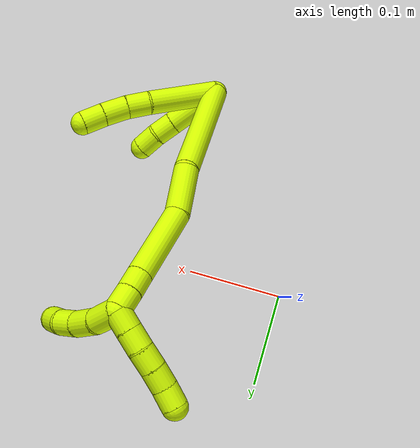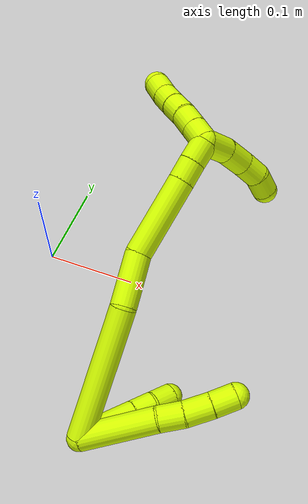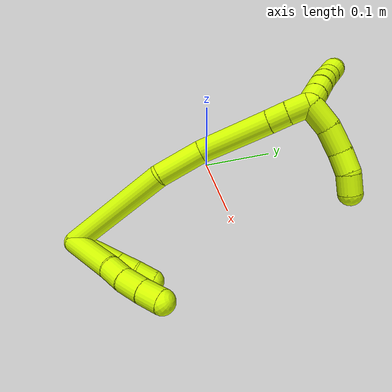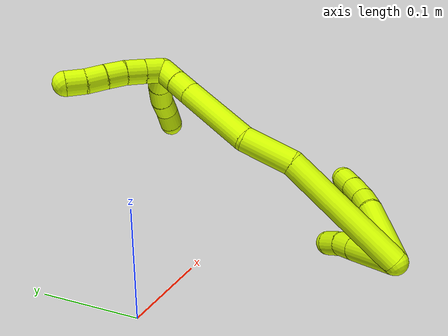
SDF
<sdf version="1.7">
 <world name="default">
  <model name="15">
   <static>0</static>
   <link name="15">
    <collision name="collision-cylinder-e_1_2_8">
     <pose>0.018145 -0.016796 0.028971 0.525381 0.496565 0.136131</pose>
     <geometry><cylinder><radius>0.0125</radius><length>0.076176</length></cylinder></geometry>
     <surface>
      <friction><ode><mu>1.16</mu><mu2>1.16</mu2><slip1>0</slip1><slip2>0</slip2></ode></friction>
      <contact><ode><kp>1e+06</kp><kd>1</kd><max_vel>0</max_vel><min_depth>0.001</min_depth></ode></contact>
     </surface>
    </collision>
    <visual name="visual-cylinder-e_1_2_8">
     <pose>0.018145 -0.016796 0.028971 0.525381 0.496565 0.136131</pose>
     <geometry><cylinder><radius>0.0125</radius><length>0.076176</length></cylinder></geometry>
     <material><ambient>0.835294 1 0 1</ambient></material>
    </visual>
    <collision name="collision-cylinder-e_2_8_9">
     <pose>0.043577 -0.038583 0.0661 0.549185 0.651114 0.189622</pose>
     <geometry><cylinder><radius>0.0125</radius><length>0.024045</length></cylinder></geometry>
     <surface>
      <friction><ode><mu>1.16</mu><mu2>1.16</mu2><slip1>0</slip1><slip2>0</slip2></ode></friction>
      <contact><ode><kp>1e+06</kp><kd>1</kd><max_vel>0</max_vel><min_depth>0.001</min_depth></ode></contact>
     </surface>
    </collision>
    <visual name="visual-cylinder-e_2_8_9">
     <pose>0.043577 -0.038583 0.0661 0.549185 0.651114 0.189622</pose>
     <geometry><cylinder><radius>0.0125</radius><length>0.024045</length></cylinder></geometry>
     <material><ambient>0.835294 1 0 1</ambient></material>
    </visual>
    <collision name="collision-cylinder-e_3_9_10">
     <pose>0.058795 -0.047529 0.083964 0.386756 0.647711 0.131278</pose>
     <geometry><cylinder><radius>0.0125</radius><length>0.026289</length></cylinder></geometry>
     <surface>
      <friction><ode><mu>1.16</mu><mu2>1.16</mu2><slip1>0</slip1><slip2>0</slip2></ode></friction>
      <contact><ode><kp>1e+06</kp><kd>1</kd><max_vel>0</max_vel><min_depth>0.001</min_depth></ode></contact>
     </surface>
    </collision>
    <visual name="visual-cylinder-e_3_9_10">
     <pose>0.058795 -0.047529 0.083964 0.386756 0.647711 0.131278</pose>
     <geometry><cylinder><radius>0.0125</radius><length>0.026289</length></cylinder></geometry>
     <material><ambient>0.835294 1 0 1</ambient></material>
    </visual>
    <collision name="collision-cylinder-e_4_10_6">
     <pose>0.073856 -0.054338 0.102558 0.310982 0.652416 0.10596</pose>
     <geometry><cylinder><radius>0.0125</radius><length>0.02349</length></cylinder></geometry>
     <surface>
      <friction><ode><mu>1.16</mu><mu2>1.16</mu2><slip1>0</slip1><slip2>0</slip2></ode></friction>
      <contact><ode><kp>1e+06</kp><kd>1</kd><max_vel>0</max_vel><min_depth>0.001</min_depth></ode></contact>
     </surface>
    </collision>
    <visual name="visual-cylinder-e_4_10_6">
     <pose>0.073856 -0.054338 0.102558 0.310982 0.652416 0.10596</pose>
     <geometry><cylinder><radius>0.0125</radius><length>0.02349</length></cylinder></geometry>
     <material><ambient>0.835294 1 0 1</ambient></material>
    </visual>
    <collision name="collision-cylinder-e_1_2_11">
     <pose>0.023163 0.000183 0.016199 -0.0113 0.960475 -0.005886</pose>
     <geometry><cylinder><radius>0.0125</radius><length>0.056532</length></cylinder></geometry>
     <surface>
      <friction><ode><mu>1.16</mu><mu2>1.16</mu2><slip1>0</slip1><slip2>0</slip2></ode></friction>
      <contact><ode><kp>1e+06</kp><kd>1</kd><max_vel>0</max_vel><min_depth>0.001</min_depth></ode></contact>
     </surface>
    </collision>
    <visual name="visual-cylinder-e_1_2_11">
     <pose>0.023163 0.000183 0.016199 -0.0113 0.960475 -0.005886</pose>
     <geometry><cylinder><radius>0.0125</radius><length>0.056532</length></cylinder></geometry>
     <material><ambient>0.835294 1 0 1</ambient></material>
    </visual>
    <collision name="collision-cylinder-e_2_11_12">
     <pose>0.055067 0.000327 0.038763 0.006175 0.941415 0.003142</pose>
     <geometry><cylinder><radius>0.0125</radius><length>0.021626</length></cylinder></geometry>
     <surface>
      <friction><ode><mu>1.16</mu><mu2>1.16</mu2><slip1>0</slip1><slip2>0</slip2></ode></friction>
      <contact><ode><kp>1e+06</kp><kd>1</kd><max_vel>0</max_vel><min_depth>0.001</min_depth></ode></contact>
     </surface>
    </collision>
    <visual name="visual-cylinder-e_2_11_12">
     <pose>0.055067 0.000327 0.038763 0.006175 0.941415 0.003142</pose>
     <geometry><cylinder><radius>0.0125</radius><length>0.021626</length></cylinder></geometry>
     <material><ambient>0.835294 1 0 1</ambient></material>
    </visual>
    <collision name="collision-cylinder-e_3_12_5">
     <pose>0.073519 0.001422 0.049994 -0.229116 1.09554 -0.140156</pose>
     <geometry><cylinder><radius>0.0125</radius><length>0.021842</length></cylinder></geometry>
     <surface>
      <friction><ode><mu>1.16</mu><mu2>1.16</mu2><slip1>0</slip1><slip2>0</slip2></ode></friction>
      <contact><ode><kp>1e+06</kp><kd>1</kd><max_vel>0</max_vel><min_depth>0.001</min_depth></ode></contact>
     </surface>
    </collision>
    <visual name="visual-cylinder-e_3_12_5">
     <pose>0.073519 0.001422 0.049994 -0.229116 1.09554 -0.140156</pose>
     <geometry><cylinder><radius>0.0125</radius><length>0.021842</length></cylinder></geometry>
     <material><ambient>0.835294 1 0 1</ambient></material>
    </visual>
    <collision name="collision-cylinder-e_1_2_13">
     <pose>-0.003409 0.019054 0.061422 -0.300799 -0.052962 0.008028</pose>
     <geometry><cylinder><radius>0.0125</radius><length>0.128799</length></cylinder></geometry>
     <surface>
      <friction><ode><mu>1.16</mu><mu2>1.16</mu2><slip1>0</slip1><slip2>0</slip2></ode></friction>
      <contact><ode><kp>1e+06</kp><kd>1</kd><max_vel>0</max_vel><min_depth>0.001</min_depth></ode></contact>
     </surface>
    </collision>
    <visual name="visual-cylinder-e_1_2_13">
     <pose>-0.003409 0.019054 0.061422 -0.300799 -0.052962 0.008028</pose>
     <geometry><cylinder><radius>0.0125</radius><length>0.128799</length></cylinder></geometry>
     <material><ambient>0.835294 1 0 1</ambient></material>
    </visual>
    <collision name="collision-cylinder-e_2_13_14">
     <pose>-0.003875 0.051429 0.144476 -0.551953 0.115355 -0.032702</pose>
     <geometry><cylinder><radius>0.0125</radius><length>0.05115</length></cylinder></geometry>
     <surface>
      <friction><ode><mu>1.16</mu><mu2>1.16</mu2><slip1>0</slip1><slip2>0</slip2></ode></friction>
      <contact><ode><kp>1e+06</kp><kd>1</kd><max_vel>0</max_vel><min_depth>0.001</min_depth></ode></contact>
     </surface>
    </collision>
    <visual name="visual-cylinder-e_2_13_14">
     <pose>-0.003875 0.051429 0.144476 -0.551953 0.115355 -0.032702</pose>
     <geometry><cylinder><radius>0.0125</radius><length>0.05115</length></cylinder></geometry>
     <material><ambient>0.835294 1 0 1</ambient></material>
    </visual>
    <collision name="collision-cylinder-e_3_14_15">
     <pose>0.006127 0.073765 0.203053 -0.239342 0.18352 -0.022129</pose>
     <geometry><cylinder><radius>0.0125</radius><length>0.077355</length></cylinder></geometry>
     <surface>
      <friction><ode><mu>1.16</mu><mu2>1.16</mu2><slip1>0</slip1><slip2>0</slip2></ode></friction>
      <contact><ode><kp>1e+06</kp><kd>1</kd><max_vel>0</max_vel><min_depth>0.001</min_depth></ode></contact>
     </surface>
    </collision>
    <visual name="visual-cylinder-e_3_14_15">
     <pose>0.006127 0.073765 0.203053 -0.239342 0.18352 -0.022129</pose>
     <geometry><cylinder><radius>0.0125</radius><length>0.077355</length></cylinder></geometry>
     <material><ambient>0.835294 1 0 1</ambient></material>
    </visual>
    <collision name="collision-cylinder-e_4_15_16">
     <pose>0.014918 0.085221 0.249884 -0.242004 0.168517 -0.020539</pose>
     <geometry><cylinder><radius>0.0125</radius><length>0.020662</length></cylinder></geometry>
     <surface>
      <friction><ode><mu>1.16</mu><mu2>1.16</mu2><slip1>0</slip1><slip2>0</slip2></ode></friction>
      <contact><ode><kp>1e+06</kp><kd>1</kd><max_vel>0</max_vel><min_depth>0.001</min_depth></ode></contact>
     </surface>
    </collision>
    <visual name="visual-cylinder-e_4_15_16">
     <pose>0.014918 0.085221 0.249884 -0.242004 0.168517 -0.020539</pose>
     <geometry><cylinder><radius>0.0125</radius><length>0.020662</length></cylinder></geometry>
     <material><ambient>0.835294 1 0 1</ambient></material>
    </visual>
    <collision name="collision-cylinder-e_5_16_1">
     <pose>0.018762 0.089995 0.27033 -0.217473 0.192786 -0.02111</pose>
     <geometry><cylinder><radius>0.0125</radius><length>0.022034</length></cylinder></geometry>
     <surface>
      <friction><ode><mu>1.16</mu><mu2>1.16</mu2><slip1>0</slip1><slip2>0</slip2></ode></friction>
      <contact><ode><kp>1e+06</kp><kd>1</kd><max_vel>0</max_vel><min_depth>0.001</min_depth></ode></contact>
     </surface>
    </collision>
    <visual name="visual-cylinder-e_5_16_1">
     <pose>0.018762 0.089995 0.27033 -0.217473 0.192786 -0.02111</pose>
     <geometry><cylinder><radius>0.0125</radius><length>0.022034</length></cylinder></geometry>
     <material><ambient>0.835294 1 0 1</ambient></material>
    </visual>
    <collision name="collision-cylinder-e_1_1_17">
     <pose>0.035395 0.092461 0.282031 -0.116 1.49173 -0.107191</pose>
     <geometry><cylinder><radius>0.0125</radius><length>0.029136</length></cylinder></geometry>
     <surface>
      <friction><ode><mu>1.16</mu><mu2>1.16</mu2><slip1>0</slip1><slip2>0</slip2></ode></friction>
      <contact><ode><kp>1e+06</kp><kd>1</kd><max_vel>0</max_vel><min_depth>0.001</min_depth></ode></contact>
     </surface>
    </collision>
    <visual name="visual-cylinder-e_1_1_17">
     <pose>0.035395 0.092461 0.282031 -0.116 1.49173 -0.107191</pose>
     <geometry><cylinder><radius>0.0125</radius><length>0.029136</length></cylinder></geometry>
     <material><ambient>0.835294 1 0 1</ambient></material>
    </visual>
    <collision name="collision-cylinder-e_2_17_18">
     <pose>0.063324 0.090575 0.28193 2.12299 1.39574 1.96669</pose>
     <geometry><cylinder><radius>0.0125</radius><length>0.027228</length></cylinder></geometry>
     <surface>
      <friction><ode><mu>1.16</mu><mu2>1.16</mu2><slip1>0</slip1><slip2>0</slip2></ode></friction>
      <contact><ode><kp>1e+06</kp><kd>1</kd><max_vel>0</max_vel><min_depth>0.001</min_depth></ode></contact>
     </surface>
    </collision>
    <visual name="visual-cylinder-e_2_17_18">
     <pose>0.063324 0.090575 0.28193 2.12299 1.39574 1.96669</pose>
     <geometry><cylinder><radius>0.0125</radius><length>0.027228</length></cylinder></geometry>
     <material><ambient>0.835294 1 0 1</ambient></material>
    </visual>
    <collision name="collision-cylinder-e_3_18_19">
     <pose>0.08731 0.085085 0.279197 1.97616 1.2278 1.63776</pose>
     <geometry><cylinder><radius>0.0125</radius><length>0.022469</length></cylinder></geometry>
     <surface>
      <friction><ode><mu>1.16</mu><mu2>1.16</mu2><slip1>0</slip1><slip2>0</slip2></ode></friction>
      <contact><ode><kp>1e+06</kp><kd>1</kd><max_vel>0</max_vel><min_depth>0.001</min_depth></ode></contact>
     </surface>
    </collision>
    <visual name="visual-cylinder-e_3_18_19">
     <pose>0.08731 0.085085 0.279197 1.97616 1.2278 1.63776</pose>
     <geometry><cylinder><radius>0.0125</radius><length>0.022469</length></cylinder></geometry>
     <material><ambient>0.835294 1 0 1</ambient></material>
    </visual>
    <collision name="collision-cylinder-e_4_19_4">
     <pose>0.107303 0.079653 0.273284 2.72453 1.09608 2.4742</pose>
     <geometry><cylinder><radius>0.0125</radius><length>0.021167</length></cylinder></geometry>
     <surface>
      <friction><ode><mu>1.16</mu><mu2>1.16</mu2><slip1>0</slip1><slip2>0</slip2></ode></friction>
      <contact><ode><kp>1e+06</kp><kd>1</kd><max_vel>0</max_vel><min_depth>0.001</min_depth></ode></contact>
     </surface>
    </collision>
    <visual name="visual-cylinder-e_4_19_4">
     <pose>0.107303 0.079653 0.273284 2.72453 1.09608 2.4742</pose>
     <geometry><cylinder><radius>0.0125</radius><length>0.021167</length></cylinder></geometry>
     <material><ambient>0.835294 1 0 1</ambient></material>
    </visual>
    <collision name="collision-cylinder-e_1_1_20">
     <pose>0.019933 0.102043 0.283064 -1.35053 -0.094126 0.075402</pose>
     <geometry><cylinder><radius>0.0125</radius><length>0.02</length></cylinder></geometry>
     <surface>
      <friction><ode><mu>1.16</mu><mu2>1.16</mu2><slip1>0</slip1><slip2>0</slip2></ode></friction>
      <contact><ode><kp>1e+06</kp><kd>1</kd><max_vel>0</max_vel><min_depth>0.001</min_depth></ode></contact>
     </surface>
    </collision>
    <visual name="visual-cylinder-e_1_1_20">
     <pose>0.019933 0.102043 0.283064 -1.35053 -0.094126 0.075402</pose>
     <geometry><cylinder><radius>0.0125</radius><length>0.02</length></cylinder></geometry>
     <material><ambient>0.835294 1 0 1</ambient></material>
    </visual>
    <collision name="collision-cylinder-e_2_20_21">
     <pose>0.018064 0.121501 0.287291 -1.36324 -0.093033 0.0755</pose>
     <geometry><cylinder><radius>0.0125</radius><length>0.02</length></cylinder></geometry>
     <surface>
      <friction><ode><mu>1.16</mu><mu2>1.16</mu2><slip1>0</slip1><slip2>0</slip2></ode></friction>
      <contact><ode><kp>1e+06</kp><kd>1</kd><max_vel>0</max_vel><min_depth>0.001</min_depth></ode></contact>
     </surface>
    </collision>
    <visual name="visual-cylinder-e_2_20_21">
     <pose>0.018064 0.121501 0.287291 -1.36324 -0.093033 0.0755</pose>
     <geometry><cylinder><radius>0.0125</radius><length>0.02</length></cylinder></geometry>
     <material><ambient>0.835294 1 0 1</ambient></material>
    </visual>
    <collision name="collision-cylinder-e_3_21_22">
     <pose>0.016903 0.141191 0.290344 -1.47046 -0.023236 0.021014</pose>
     <geometry><cylinder><radius>0.0125</radius><length>0.02</length></cylinder></geometry>
     <surface>
      <friction><ode><mu>1.16</mu><mu2>1.16</mu2><slip1>0</slip1><slip2>0</slip2></ode></friction>
      <contact><ode><kp>1e+06</kp><kd>1</kd><max_vel>0</max_vel><min_depth>0.001</min_depth></ode></contact>
     </surface>
    </collision>
    <visual name="visual-cylinder-e_3_21_22">
     <pose>0.016903 0.141191 0.290344 -1.47046 -0.023236 0.021014</pose>
     <geometry><cylinder><radius>0.0125</radius><length>0.02</length></cylinder></geometry>
     <material><ambient>0.835294 1 0 1</ambient></material>
    </visual>
    <collision name="collision-cylinder-e_4_22_23">
     <pose>0.017023 0.161075 0.292409 -1.46418 0.035271 -0.031699</pose>
     <geometry><cylinder><radius>0.0125</radius><length>0.02</length></cylinder></geometry>
     <surface>
      <friction><ode><mu>1.16</mu><mu2>1.16</mu2><slip1>0</slip1><slip2>0</slip2></ode></friction>
      <contact><ode><kp>1e+06</kp><kd>1</kd><max_vel>0</max_vel><min_depth>0.001</min_depth></ode></contact>
     </surface>
    </collision>
    <visual name="visual-cylinder-e_4_22_23">
     <pose>0.017023 0.161075 0.292409 -1.46418 0.035271 -0.031699</pose>
     <geometry><cylinder><radius>0.0125</radius><length>0.02</length></cylinder></geometry>
     <material><ambient>0.835294 1 0 1</ambient></material>
    </visual>
    <collision name="collision-cylinder-e_5_23_3">
     <pose>0.017233 0.18077 0.295655 -1.35075 -0.014205 0.011379</pose>
     <geometry><cylinder><radius>0.0125</radius><length>0.02</length></cylinder></geometry>
     <surface>
      <friction><ode><mu>1.16</mu><mu2>1.16</mu2><slip1>0</slip1><slip2>0</slip2></ode></friction>
      <contact><ode><kp>1e+06</kp><kd>1</kd><max_vel>0</max_vel><min_depth>0.001</min_depth></ode></contact>
     </surface>
    </collision>
    <visual name="visual-cylinder-e_5_23_3">
     <pose>0.017233 0.18077 0.295655 -1.35075 -0.014205 0.011379</pose>
     <geometry><cylinder><radius>0.0125</radius><length>0.02</length></cylinder></geometry>
     <material><ambient>0.835294 1 0 1</ambient></material>
    </visual>
    <collision name="collision-sphere-3">
     <pose>0.017091 0.190528 0.297837 0 -0 0</pose>
     <geometry><sphere><radius>0.0125</radius></sphere></geometry>
     <surface>
      <friction><ode><mu>1.16</mu><mu2>1.16</mu2><slip1>0</slip1><slip2>0</slip2></ode></friction>
      <contact><ode><kp>1e+06</kp><kd>1</kd><max_vel>0</max_vel><min_depth>0.001</min_depth></ode></contact>
     </surface>
    </collision>
    <visual name="visual-sphere-3">
     <pose>0.017091 0.190528 0.297837 0 -0 0</pose>
     <geometry><sphere><radius>0.0125</radius></sphere></geometry>
     <material><ambient>0.835294 1 0 1</ambient></material>
    </visual>
    <collision name="collision-sphere-23">
     <pose>0.017375 0.171012 0.293472 0 -0 0</pose>
     <geometry><sphere><radius>0.0125</radius></sphere></geometry>
     <surface>
      <friction><ode><mu>1.16</mu><mu2>1.16</mu2><slip1>0</slip1><slip2>0</slip2></ode></friction>
      <contact><ode><kp>1e+06</kp><kd>1</kd><max_vel>0</max_vel><min_depth>0.001</min_depth></ode></contact>
     </surface>
    </collision>
    <visual name="visual-sphere-23">
     <pose>0.017375 0.171012 0.293472 0 -0 0</pose>
     <geometry><sphere><radius>0.0125</radius></sphere></geometry>
     <material><ambient>0.835294 1 0 1</ambient></material>
    </visual>
    <collision name="collision-sphere-22">
     <pose>0.01667 0.151138 0.291345 0 -0 0</pose>
     <geometry><sphere><radius>0.0125</radius></sphere></geometry>
     <surface>
      <friction><ode><mu>1.16</mu><mu2>1.16</mu2><slip1>0</slip1><slip2>0</slip2></ode></friction>
      <contact><ode><kp>1e+06</kp><kd>1</kd><max_vel>0</max_vel><min_depth>0.001</min_depth></ode></contact>
     </surface>
    </collision>
    <visual name="visual-sphere-22">
     <pose>0.01667 0.151138 0.291345 0 -0 0</pose>
     <geometry><sphere><radius>0.0125</radius></sphere></geometry>
     <material><ambient>0.835294 1 0 1</ambient></material>
    </visual>
    <collision name="collision-sphere-21">
     <pose>0.017135 0.131244 0.289342 0 -0 0</pose>
     <geometry><sphere><radius>0.0125</radius></sphere></geometry>
     <surface>
      <friction><ode><mu>1.16</mu><mu2>1.16</mu2><slip1>0</slip1><slip2>0</slip2></ode></friction>
      <contact><ode><kp>1e+06</kp><kd>1</kd><max_vel>0</max_vel><min_depth>0.001</min_depth></ode></contact>
     </surface>
    </collision>
    <visual name="visual-sphere-21">
     <pose>0.017135 0.131244 0.289342 0 -0 0</pose>
     <geometry><sphere><radius>0.0125</radius></sphere></geometry>
     <material><ambient>0.835294 1 0 1</ambient></material>
    </visual>
    <collision name="collision-sphere-20">
     <pose>0.018993 0.111758 0.285239 0 -0 0</pose>
     <geometry><sphere><radius>0.0125</radius></sphere></geometry>
     <surface>
      <friction><ode><mu>1.16</mu><mu2>1.16</mu2><slip1>0</slip1><slip2>0</slip2></ode></friction>
      <contact><ode><kp>1e+06</kp><kd>1</kd><max_vel>0</max_vel><min_depth>0.001</min_depth></ode></contact>
     </surface>
    </collision>
    <visual name="visual-sphere-20">
     <pose>0.018993 0.111758 0.285239 0 -0 0</pose>
     <geometry><sphere><radius>0.0125</radius></sphere></geometry>
     <material><ambient>0.835294 1 0 1</ambient></material>
    </visual>
    <collision name="collision-sphere-4">
     <pose>0.116716 0.077693 0.268861 0 -0 0</pose>
     <geometry><sphere><radius>0.0125</radius></sphere></geometry>
     <surface>
      <friction><ode><mu>1.16</mu><mu2>1.16</mu2><slip1>0</slip1><slip2>0</slip2></ode></friction>
      <contact><ode><kp>1e+06</kp><kd>1</kd><max_vel>0</max_vel><min_depth>0.001</min_depth></ode></contact>
     </surface>
    </collision>
    <visual name="visual-sphere-4">
     <pose>0.116716 0.077693 0.268861 0 -0 0</pose>
     <geometry><sphere><radius>0.0125</radius></sphere></geometry>
     <material><ambient>0.835294 1 0 1</ambient></material>
    </visual>
    <collision name="collision-sphere-11">
     <pose>0.046326 0.000366 0.032398 0 -0 0</pose>
     <geometry><sphere><radius>0.0125</radius></sphere></geometry>
     <surface>
      <friction><ode><mu>1.16</mu><mu2>1.16</mu2><slip1>0</slip1><slip2>0</slip2></ode></friction>
      <contact><ode><kp>1e+06</kp><kd>1</kd><max_vel>0</max_vel><min_depth>0.001</min_depth></ode></contact>
     </surface>
    </collision>
    <visual name="visual-sphere-11">
     <pose>0.046326 0.000366 0.032398 0 -0 0</pose>
     <geometry><sphere><radius>0.0125</radius></sphere></geometry>
     <material><ambient>0.835294 1 0 1</ambient></material>
    </visual>
    <collision name="collision-sphere-6">
     <pose>0.080987 -0.057194 0.111443 0 -0 0</pose>
     <geometry><sphere><radius>0.0125</radius></sphere></geometry>
     <surface>
      <friction><ode><mu>1.16</mu><mu2>1.16</mu2><slip1>0</slip1><slip2>0</slip2></ode></friction>
      <contact><ode><kp>1e+06</kp><kd>1</kd><max_vel>0</max_vel><min_depth>0.001</min_depth></ode></contact>
     </surface>
    </collision>
    <visual name="visual-sphere-6">
     <pose>0.080987 -0.057194 0.111443 0 -0 0</pose>
     <geometry><sphere><radius>0.0125</radius></sphere></geometry>
     <material><ambient>0.835294 1 0 1</ambient></material>
    </visual>
    <collision name="collision-sphere-10">
     <pose>0.066726 -0.051482 0.093673 0 -0 0</pose>
     <geometry><sphere><radius>0.0125</radius></sphere></geometry>
     <surface>
      <friction><ode><mu>1.16</mu><mu2>1.16</mu2><slip1>0</slip1><slip2>0</slip2></ode></friction>
      <contact><ode><kp>1e+06</kp><kd>1</kd><max_vel>0</max_vel><min_depth>0.001</min_depth></ode></contact>
     </surface>
    </collision>
    <visual name="visual-sphere-10">
     <pose>0.066726 -0.051482 0.093673 0 -0 0</pose>
     <geometry><sphere><radius>0.0125</radius></sphere></geometry>
     <material><ambient>0.835294 1 0 1</ambient></material>
    </visual>
    <collision name="collision-sphere-9">
     <pose>0.050864 -0.043575 0.074256 0 -0 0</pose>
     <geometry><sphere><radius>0.0125</radius></sphere></geometry>
     <surface>
      <friction><ode><mu>1.16</mu><mu2>1.16</mu2><slip1>0</slip1><slip2>0</slip2></ode></friction>
      <contact><ode><kp>1e+06</kp><kd>1</kd><max_vel>0</max_vel><min_depth>0.001</min_depth></ode></contact>
     </surface>
    </collision>
    <visual name="visual-sphere-9">
     <pose>0.050864 -0.043575 0.074256 0 -0 0</pose>
     <geometry><sphere><radius>0.0125</radius></sphere></geometry>
     <material><ambient>0.835294 1 0 1</ambient></material>
    </visual>
    <collision name="collision-sphere-2">
     <geometry><sphere><radius>0.0125</radius></sphere></geometry>
     <surface>
      <friction><ode><mu>1.16</mu><mu2>1.16</mu2><slip1>0</slip1><slip2>0</slip2></ode></friction>
      <contact><ode><kp>1e+06</kp><kd>1</kd><max_vel>0</max_vel><min_depth>0.001</min_depth></ode></contact>
     </surface>
    </collision>
    <visual name="visual-sphere-2">
     <geometry><sphere><radius>0.0125</radius></sphere></geometry>
     <material><ambient>0.835294 1 0 1</ambient></material>
    </visual>
    <collision name="collision-sphere-19">
     <pose>0.09789 0.081612 0.277707 0 -0 0</pose>
     <geometry><sphere><radius>0.0125</radius></sphere></geometry>
     <surface>
      <friction><ode><mu>1.16</mu><mu2>1.16</mu2><slip1>0</slip1><slip2>0</slip2></ode></friction>
      <contact><ode><kp>1e+06</kp><kd>1</kd><max_vel>0</max_vel><min_depth>0.001</min_depth></ode></contact>
     </surface>
    </collision>
    <visual name="visual-sphere-19">
     <pose>0.09789 0.081612 0.277707 0 -0 0</pose>
     <geometry><sphere><radius>0.0125</radius></sphere></geometry>
     <material><ambient>0.835294 1 0 1</ambient></material>
    </visual>
    <collision name="collision-sphere-8">
     <pose>0.036291 -0.033591 0.057943 0 -0 0</pose>
     <geometry><sphere><radius>0.0125</radius></sphere></geometry>
     <surface>
      <friction><ode><mu>1.16</mu><mu2>1.16</mu2><slip1>0</slip1><slip2>0</slip2></ode></friction>
      <contact><ode><kp>1e+06</kp><kd>1</kd><max_vel>0</max_vel><min_depth>0.001</min_depth></ode></contact>
     </surface>
    </collision>
    <visual name="visual-sphere-8">
     <pose>0.036291 -0.033591 0.057943 0 -0 0</pose>
     <geometry><sphere><radius>0.0125</radius></sphere></geometry>
     <material><ambient>0.835294 1 0 1</ambient></material>
    </visual>
    <collision name="collision-sphere-12">
     <pose>0.063808 0.000288 0.045128 0 -0 0</pose>
     <geometry><sphere><radius>0.0125</radius></sphere></geometry>
     <surface>
      <friction><ode><mu>1.16</mu><mu2>1.16</mu2><slip1>0</slip1><slip2>0</slip2></ode></friction>
      <contact><ode><kp>1e+06</kp><kd>1</kd><max_vel>0</max_vel><min_depth>0.001</min_depth></ode></contact>
     </surface>
    </collision>
    <visual name="visual-sphere-12">
     <pose>0.063808 0.000288 0.045128 0 -0 0</pose>
     <geometry><sphere><radius>0.0125</radius></sphere></geometry>
     <material><ambient>0.835294 1 0 1</ambient></material>
    </visual>
    <collision name="collision-sphere-5">
     <pose>0.08323 0.002557 0.054861 0 -0 0</pose>
     <geometry><sphere><radius>0.0125</radius></sphere></geometry>
     <surface>
      <friction><ode><mu>1.16</mu><mu2>1.16</mu2><slip1>0</slip1><slip2>0</slip2></ode></friction>
      <contact><ode><kp>1e+06</kp><kd>1</kd><max_vel>0</max_vel><min_depth>0.001</min_depth></ode></contact>
     </surface>
    </collision>
    <visual name="visual-sphere-5">
     <pose>0.08323 0.002557 0.054861 0 -0 0</pose>
     <geometry><sphere><radius>0.0125</radius></sphere></geometry>
     <material><ambient>0.835294 1 0 1</ambient></material>
    </visual>
    <collision name="collision-sphere-13">
     <pose>-0.006818 0.038108 0.122844 0 -0 0</pose>
     <geometry><sphere><radius>0.0125</radius></sphere></geometry>
     <surface>
      <friction><ode><mu>1.16</mu><mu2>1.16</mu2><slip1>0</slip1><slip2>0</slip2></ode></friction>
      <contact><ode><kp>1e+06</kp><kd>1</kd><max_vel>0</max_vel><min_depth>0.001</min_depth></ode></contact>
     </surface>
    </collision>
    <visual name="visual-sphere-13">
     <pose>-0.006818 0.038108 0.122844 0 -0 0</pose>
     <geometry><sphere><radius>0.0125</radius></sphere></geometry>
     <material><ambient>0.835294 1 0 1</ambient></material>
    </visual>
    <collision name="collision-sphere-14">
     <pose>-0.000931 0.06475 0.166109 0 -0 0</pose>
     <geometry><sphere><radius>0.0125</radius></sphere></geometry>
     <surface>
      <friction><ode><mu>1.16</mu><mu2>1.16</mu2><slip1>0</slip1><slip2>0</slip2></ode></friction>
      <contact><ode><kp>1e+06</kp><kd>1</kd><max_vel>0</max_vel><min_depth>0.001</min_depth></ode></contact>
     </surface>
    </collision>
    <visual name="visual-sphere-14">
     <pose>-0.000931 0.06475 0.166109 0 -0 0</pose>
     <geometry><sphere><radius>0.0125</radius></sphere></geometry>
     <material><ambient>0.835294 1 0 1</ambient></material>
    </visual>
    <collision name="collision-sphere-15">
     <pose>0.013186 0.08278 0.239997 0 -0 0</pose>
     <geometry><sphere><radius>0.0125</radius></sphere></geometry>
     <surface>
      <friction><ode><mu>1.16</mu><mu2>1.16</mu2><slip1>0</slip1><slip2>0</slip2></ode></friction>
      <contact><ode><kp>1e+06</kp><kd>1</kd><max_vel>0</max_vel><min_depth>0.001</min_depth></ode></contact>
     </surface>
    </collision>
    <visual name="visual-sphere-15">
     <pose>0.013186 0.08278 0.239997 0 -0 0</pose>
     <geometry><sphere><radius>0.0125</radius></sphere></geometry>
     <material><ambient>0.835294 1 0 1</ambient></material>
    </visual>
    <collision name="collision-sphere-16">
     <pose>0.016651 0.087662 0.259772 0 -0 0</pose>
     <geometry><sphere><radius>0.0125</radius></sphere></geometry>
     <surface>
      <friction><ode><mu>1.16</mu><mu2>1.16</mu2><slip1>0</slip1><slip2>0</slip2></ode></friction>
      <contact><ode><kp>1e+06</kp><kd>1</kd><max_vel>0</max_vel><min_depth>0.001</min_depth></ode></contact>
     </surface>
    </collision>
    <visual name="visual-sphere-16">
     <pose>0.016651 0.087662 0.259772 0 -0 0</pose>
     <geometry><sphere><radius>0.0125</radius></sphere></geometry>
     <material><ambient>0.835294 1 0 1</ambient></material>
    </visual>
    <collision name="collision-sphere-1">
     <pose>0.020873 0.092328 0.280888 0 -0 0</pose>
     <geometry><sphere><radius>0.0125</radius></sphere></geometry>
     <surface>
      <friction><ode><mu>1.16</mu><mu2>1.16</mu2><slip1>0</slip1><slip2>0</slip2></ode></friction>
      <contact><ode><kp>1e+06</kp><kd>1</kd><max_vel>0</max_vel><min_depth>0.001</min_depth></ode></contact>
     </surface>
    </collision>
    <visual name="visual-sphere-1">
     <pose>0.020873 0.092328 0.280888 0 -0 0</pose>
     <geometry><sphere><radius>0.0125</radius></sphere></geometry>
     <material><ambient>0.835294 1 0 1</ambient></material>
    </visual>
    <collision name="collision-sphere-18">
     <pose>0.07673 0.088557 0.280687 0 -0 0</pose>
     <geometry><sphere><radius>0.0125</radius></sphere></geometry>
     <surface>
      <friction><ode><mu>1.16</mu><mu2>1.16</mu2><slip1>0</slip1><slip2>0</slip2></ode></friction>
      <contact><ode><kp>1e+06</kp><kd>1</kd><max_vel>0</max_vel><min_depth>0.001</min_depth></ode></contact>
     </surface>
    </collision>
    <visual name="visual-sphere-18">
     <pose>0.07673 0.088557 0.280687 0 -0 0</pose>
     <geometry><sphere><radius>0.0125</radius></sphere></geometry>
     <material><ambient>0.835294 1 0 1</ambient></material>
    </visual>
    <collision name="collision-sphere-17">
     <pose>0.049918 0.092594 0.283174 0 -0 0</pose>
     <geometry><sphere><radius>0.0125</radius></sphere></geometry>
     <surface>
      <friction><ode><mu>1.16</mu><mu2>1.16</mu2><slip1>0</slip1><slip2>0</slip2></ode></friction>
      <contact><ode><kp>1e+06</kp><kd>1</kd><max_vel>0</max_vel><min_depth>0.001</min_depth></ode></contact>
     </surface>
    </collision>
    <visual name="visual-sphere-17">
     <pose>0.049918 0.092594 0.283174 0 -0 0</pose>
     <geometry><sphere><radius>0.0125</radius></sphere></geometry>
     <material><ambient>0.835294 1 0 1</ambient></material>
    </visual>
    <inertial>
     <pose>0.025529 0.043653 0.147084 0 -0 0</pose>
     <mass>0.75</mass>
     <inertia>
      <ixx>0.000327</ixx>
      <ixy>0</ixy>
      <ixz>0</ixz>
      <iyy>0.000319</iyy>
      <iyz>0</iyz>
      <izz>-7.1e-05</izz>
     </inertia>
    </inertial>
   </link>
   <pose>0.128782 -0.192927 0.033246 -0.317831 0.776857 0.689504</pose>
  </model>
 </world>
</sdf>
